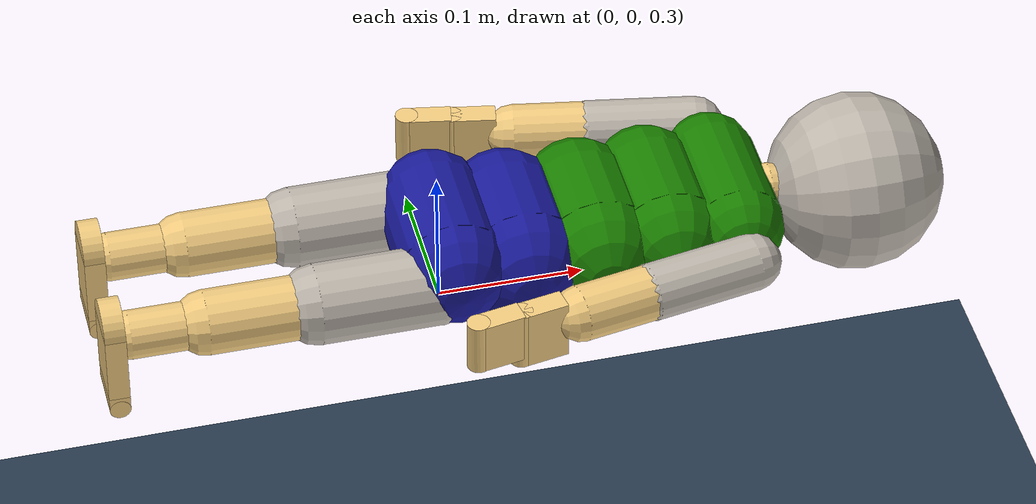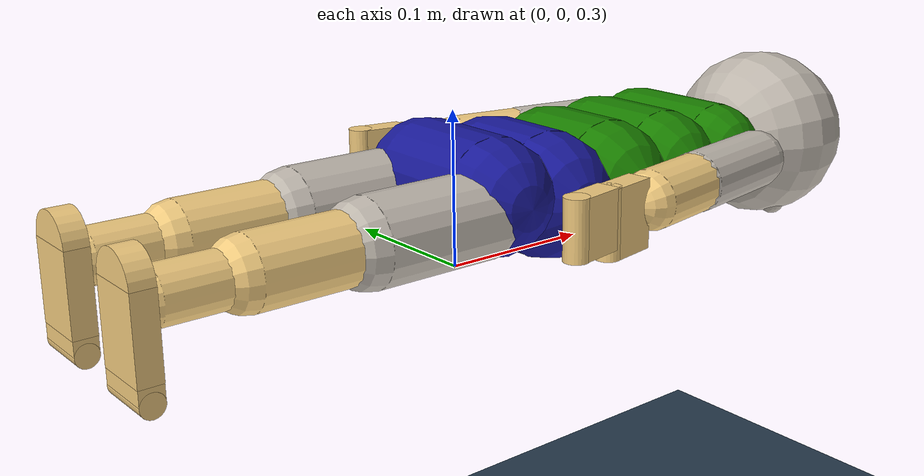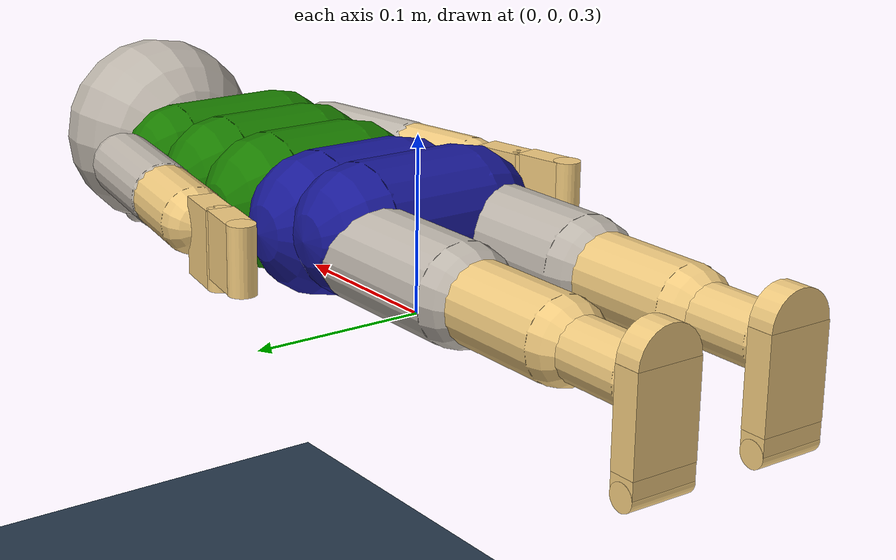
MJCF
<mujoco model="MIMo">

    <compiler inertiafromgeom="true" angle="degree"/>
    <option timestep="0.005" iterations="50" tolerance="1e-10" solver="Newton" jacobian="dense" cone="elliptic" impratio="1.0"/>
    <size nconmax="1000" njmax="5000" nstack="10000000" nuser_cam="3"/>

    <visual>
        <map force="0.1" zfar="30" znear="0.005"/>
        <rgba haze="0.15 0.25 0.35 1"/>
        <quality shadowsize="4096"/>
        <global offwidth="800" offheight="800"/>
    </visual>

    <asset>

        <texture type="skybox" builtin="gradient" rgb1="0.3 0.5 0.7" rgb2="0 0 0" width="512" height="512"/>

        <texture name="texplane" type="2d" builtin="checker" rgb1=".2 .3 .4" rgb2=".1 0.15 0.2" width="512" height="512" mark="cross" markrgb=".8 .8 .8"/>
        <material name="matplane" reflectance="0.3" texture="texplane" texrepeat="1 1" texuniform="true"/>

        <material name="orange" rgba="0.9 0.4 0 1" specular=".2" shininess=".8"/>

    </asset>

	<size nuser_actuator="3" />

	<default>
		<default class="mimo">
        	<joint limited="true" damping=".1" stiffness=".1" armature="0.001" solimplimit="0.98 0.99 0.001 .5 1" solreflimit="0.02 1" />
        	<geom condim="3" material="skin" friction="1 0.005 0.0002" solimp="0.95 0.99 0.001 0.5 1" solref="0.005 1" />
        	<motor ctrlrange="-1 1" ctrllimited="true" forcelimited="true" />
		</default>
    </default>

    <asset>

		<texture name="tex_head_default" type="cube" fileright="tex/head_front.png" fileleft="tex/head_back.png" fileup="tex/head_left.png" filedown="tex/head_right.png" filefront="tex/head_top.png" rgb1="0.95 .8 .5" />
		<texture name="tex_head_happy" type="cube" fileright="tex/head_front_happy.png" fileleft="tex/head_back.png" fileup="tex/head_left.png" filedown="tex/head_right.png" filefront="tex/head_top.png" rgb1="0.95 .8 .5" />
		<texture name="tex_head_sad" type="cube" fileright="tex/head_front_sad.png" fileleft="tex/head_back.png" fileup="tex/head_left.png" filedown="tex/head_right.png" filefront="tex/head_top.png" rgb1="0.95 .8 .5" />
		<texture name="tex_head_surprised" type="cube" fileright="tex/head_front_surprised.png" fileleft="tex/head_back.png" fileup="tex/head_left.png" filedown="tex/head_right.png" filefront="tex/head_top.png" rgb1="0.95 .8 .5" />
		<texture name="tex_head_angry" type="cube" fileright="tex/head_front_angry.png" fileleft="tex/head_back.png" fileup="tex/head_left.png" filedown="tex/head_right.png" filefront="tex/head_top.png" rgb1="0.95 .8 .5" />
		<texture name="tex_head_disgusted" type="cube" fileright="tex/head_front_disgusted.png" fileleft="tex/head_back.png" fileup="tex/head_left.png" filedown="tex/head_right.png" filefront="tex/head_top.png" rgb1="0.95 .8 .5" />
		<texture name="tex_head_scared" type="cube" fileright="tex/head_front_scared.png" fileleft="tex/head_back.png" fileup="tex/head_left.png" filedown="tex/head_right.png" filefront="tex/head_top.png" rgb1="0.95 .8 .5" />
		<texture name="tex_top_sleeve" type="cube" fileright="tex/sleeve_right.png" fileleft="tex/sleeve_left.png" fileup="tex/sleeve_up.png" filedown="tex/sleeve_down.png" filefront="tex/sleeve_front.png" fileback="tex/sleeve_back.png" rgb1="0.95 .8 .5" />
		<texture name="tex_pants_leg" type="cube" fileright="tex/leg_right.png" fileleft="tex/leg_left.png" fileup="tex/leg_up.png" filedown="tex/leg_down.png" filefront="tex/leg_front.png" fileback="tex/leg_back.png" rgb1="0.95 .8 .5" />
		<texture name="tex_eye_left" type="cube" fileright="tex/eye_pupil_left.png" rgb1="1 1 1" />
		<texture name="tex_eye_right" type="cube" fileright="tex/eye_pupil_right.png" rgb1="1 1 1" />

		<material name="skin" rgba="0.95 0.8 0.5 1" specular=".15" shininess=".7" />
		<material name="buttons" rgba=".05 .05 .05 1" specular=".9" shininess=".9" />
		<material name="head" texture="tex_head_default" texuniform="true" specular=".0" shininess=".0" />
		<material name="top_up" rgba=".1 .5 0.0 1" specular=".0" shininess=".0" />
		<material name="top_middle" rgba=".1 .5 0.0 1" specular=".0" shininess=".0" />
		<material name="top_down" rgba=".1 .5 0.0 1" specular=".0" shininess=".0" />
		<material name="top_sleeve" texture="tex_top_sleeve" texuniform="true" specular=".0" shininess=".0" />
		<material name="pants_up" rgba="0.1 0.1 0.6 1" specular=".0" shininess=".0" />
		<material name="pants_down" rgba="0.1 0.1 0.6 1" specular=".0" shininess=".0" />
		<material name="pants_leg" texture="tex_pants_leg" texuniform="true" specular=".0" shininess=".0" />
		<material name="eye_left" texture="tex_eye_left" texuniform="true" specular=".0" shininess=".0" />
		<material name="eye_right" texture="tex_eye_right" texuniform="true" specular=".0" shininess=".0" />

    </asset>

	<contact>
		<pair geom1="lb" geom2="ub1" condim="1" />
		<exclude body1="left_eye" body2="upper_body" />
		<exclude body1="right_eye" body2="upper_body" />
	</contact>

	<tendon>
		<fixed class="mimo" name="hip_bend" limited="true" range="-.01 .01">
			<joint joint="robot:hip_bend1" coef="1" />
			<joint joint="robot:hip_bend2" coef="-1" />
		</fixed>
		<fixed class="mimo" name="hip_rotation" limited="true" range="-.01 .01">
			<joint joint="robot:hip_rot1" coef="1" />
			<joint joint="robot:hip_rot2" coef="-1" />
		</fixed>
		<fixed class="mimo" name="hip_lean" limited="true" range="-.01 .01">
			<joint joint="robot:hip_lean1" coef="1" />
			<joint joint="robot:hip_lean2" coef="-.5" />
		</fixed>
		<fixed class="mimo" name="head_limits1" limited="true" range="-2.1 2.1">
			<joint joint="robot:head_swivel" coef="1" />
			<joint joint="robot:head_tilt_side" coef="1" />
		</fixed>
		<fixed class="mimo" name="head_limits2" limited="true" range="-2.1 2.1">
			<joint joint="robot:head_tilt" coef="1" />
			<joint joint="robot:head_tilt_side" coef="1" />
		</fixed>
		<fixed class="mimo" name="head_limits3" limited="true" range="-2.1 2.1">
			<joint joint="robot:head_swivel" coef="1" />
			<joint joint="robot:head_tilt" coef="1" />
		</fixed>
		<fixed class="mimo" name="head_limits1_sym" limited="true" range="-2.1 2.1">
			<joint joint="robot:head_swivel" coef="1" />
			<joint joint="robot:head_tilt_side" coef="-1" />
		</fixed>
		<fixed class="mimo" name="head_limits2_sym" limited="true" range="-2.1 2.1">
			<joint joint="robot:head_tilt" coef="1" />
			<joint joint="robot:head_tilt_side" coef="-1" />
		</fixed>
		<fixed class="mimo" name="head_limits3_sym" limited="true" range="-2.1 2.1">
			<joint joint="robot:head_swivel" coef="1" />
			<joint joint="robot:head_tilt" coef="-1" />
		</fixed>
	</tendon>

	<sensor>
		<accelerometer name="vestibular_acc" site="vestibular" />
		<gyro name="vestibular_gyro" site="vestibular" />

		<torque name="proprio:neck" site="torque_neck" />
		<torque name="proprio:left_eye" site="torque_left_eye" />
		<torque name="proprio:right_eye" site="torque_right_eye" />

		<torque name="proprio:chest" site="torque_chest" />
		<torque name="proprio:trunk_upper" site="torque_ub" />
		<torque name="proprio:trunk_lower" site="torque_lb" />

		<torque name="proprio:right_shoulder" site="torque_right_shoulder" />
		<torque name="proprio:right_elbow" site="torque_right_elbow" />
		<torque name="proprio:right_wrist" site="torque_right_wrist" />
		<torque name="proprio:right_fingers" site="torque_right_fingers" />

		<torque name="proprio:left_shoulder" site="torque_left_shoulder" />
		<torque name="proprio:left_elbow" site="torque_left_elbow" />
		<torque name="proprio:left_wrist" site="torque_left_wrist" />
		<torque name="proprio:left_fingers" site="torque_left_fingers" />

		<torque name="proprio:right_hip" site="torque_right_hip" />
		<torque name="proprio:right_knee" site="torque_right_knee" />
		<torque name="proprio:right_ankle" site="torque_right_ankle" />
		<torque name="proprio:right_toes" site="torque_right_toes" />

		<torque name="proprio:left_hip" site="torque_left_hip" />
		<torque name="proprio:left_knee" site="torque_left_knee" />
		<torque name="proprio:left_ankle" site="torque_left_ankle" />
		<torque name="proprio:left_toes" site="torque_left_toes" />

		<framelinvel name="kobayashi:left_wrist" objtype="site" objname="KOBAYASHI_LWrist" />
		<framelinvel name="kobayashi:right_wrist" objtype="site" objname="KOBAYASHI_RWrist" />
		<framelinvel name="kobayashi:left_ankle" objtype="site" objname="KOBAYASHI_LAnkle" />
		<framelinvel name="kobayashi:right_ankle" objtype="site" objname="KOBAYASHI_RAnkle" />
		<framelinvel name="kobayashi:torso" objtype="site" objname="KOBAYASHI_Torso" />
	</sensor>

  <actuator>
		<motor class="mimo" name="act:hip_bend" joint="robot:hip_bend1" gear="4.792849908097783" forcerange="-1 .765" user=".8574 32.93 22.97" />
		<motor class="mimo" name="act:hip_twist" joint="robot:hip_rot1" gear="1.6444277094891258" forcerange="-1 1" user="1.699 8.136 8.136" />
		<motor class="mimo" name="act:hip_lean" joint="robot:hip_lean1" gear="3.2843253150953613" forcerange="-1 1" user="1.278 1.264 1.264" />

		<motor class="mimo" name="act:chest_twist" joint="robot:chest_rot" gear="0.1630837397840455" forcerange="-1 1" user="1.699 8.136 8.136" />
		<motor class="mimo" name="act:chest_lean" joint="robot:chest_lean" gear="0.326167479568091" forcerange="-1 1" user="1.278 1.264 1.264" />

		<motor class="mimo" name="act:head_swivel" joint="robot:head_swivel" gear="1.0051784555238277" forcerange="-1 1" user=".6665 24.87 24.87" />
		<motor class="mimo" name="act:head_tilt" joint="robot:head_tilt" gear="1.8428271684603503" forcerange="-1 .55" user=".9338 31.39 16.86" />
		<motor class="mimo" name="act:head_tilt_side" joint="robot:head_tilt_side" gear="1.0051784555238277" forcerange="-1 1" user="1.068 15.69 15.69" />

		<motor class="mimo" name="act:left_eye_horizontal" joint="robot:left_eye_horizontal" gear="0.003015535366571483" forcerange="-1 1" user="5.110 .03025 .03025" />
		<motor class="mimo" name="act:left_eye_vertical" joint="robot:left_eye_vertical" gear="0.003015535366571483" forcerange="-1 1" user="6.179 .02619 .02771" />
		<motor class="mimo" name="act:left_eye_torsional" joint="robot:left_eye_torsional" gear="0.0020662001585767566" forcerange="-1 1" user="25.03 .003686 .003686" />
		<motor class="mimo" name="act:right_eye_horizontal" joint="robot:right_eye_horizontal" gear="0.003015535366571483" forcerange="-1 1" user="5.110 .03025 .03025" />
		<motor class="mimo" name="act:right_eye_vertical" joint="robot:right_eye_vertical" gear="0.003015535366571483" forcerange="-1 1" user="6.179 .02619 .02771" />
		<motor class="mimo" name="act:right_eye_torsional" joint="robot:right_eye_torsional" gear="0.0020662001585767566" forcerange="-1 1" user="25.03 .003686 .003686" />

		<motor class="mimo" name="act:right_shoulder_horizontal" joint="robot:right_shoulder_horizontal" gear="0.8428609627943823" forcerange="-1 1" user="1.811 18.80 15.30" />
		<motor class="mimo" name="act:right_shoulder_abduction" joint="robot:right_shoulder_ad_ab" gear="1.873024361765294" forcerange="-.6875 1" user=".8793 44.17 69.23" />
		<motor class="mimo" name="act:right_shoulder_internal" joint="robot:right_shoulder_rotation" gear="1.1706402261033086" forcerange="-1 .64" user="1.498 25.09 17.10" />
		<motor class="mimo" name="act:right_elbow" joint="robot:right_elbow" gear="1.755558656111056" forcerange="-1 .83" user="1.566 35.43 27.04" />
		<motor class="mimo" name="act:right_wrist_rotation" joint="robot:right_hand1" gear="0.29698396926039833" forcerange="-1 1" user="1.513 7.842 7.842" />
		<motor class="mimo" name="act:right_wrist_flexion" joint="robot:right_hand2" gear="0.5260858884041343" forcerange="-1 .57" user="1.455 13.66 7.874" />
		<motor class="mimo" name="act:right_wrist_ulnar" joint="robot:right_hand3" gear="0.4030496725676834" forcerange="-.87 1" user="2.254 5.155 6.021" />
		<motor class="mimo" name="act:right_fingers" joint="robot:right_fingers" gear="0.29274134112810696" forcerange="-1 .33" user="3.019 6.854 2.551" />

		<motor class="mimo" name="act:left_shoulder_horizontal" joint="robot:left_shoulder_horizontal" gear="0.8428609627943823" forcerange="-1 1" user="1.811 18.80 15.30" />
		<motor class="mimo" name="act:left_shoulder_abduction" joint="robot:left_shoulder_ad_ab" gear="1.873024361765294" forcerange="-.6875 1" user=".8793 44.17 69.23" />
		<motor class="mimo" name="act:left_shoulder_internal" joint="robot:left_shoulder_rotation" gear="1.1706402261033086" forcerange="-1 .64" user="1.498 25.09 17.10" />
		<motor class="mimo" name="act:left_elbow" joint="robot:left_elbow" gear="1.755558656111056" forcerange="-1 .83" user="1.566 35.43 27.04" />
		<motor class="mimo" name="act:left_wrist_rotation" joint="robot:left_hand1" gear="0.29698396926039833" forcerange="-1 1" user="1.513 7.842 7.842" />
		<motor class="mimo" name="act:left_wrist_flexion" joint="robot:left_hand2" gear="0.5260858884041343" forcerange="-1 .57" user="1.455 13.66 7.874" />
		<motor class="mimo" name="act:left_wrist_ulnar" joint="robot:left_hand3" gear="0.4030496725676834" forcerange="-.87 1" user="2.254 5.155 6.021" />
		<motor class="mimo" name="act:left_fingers" joint="robot:left_fingers" gear="0.29274134112810696" forcerange="-1 .33" user="3.019 6.854 2.551" />

		<motor class="mimo" name="act:right_hip_flex" joint="robot:right_hip1" gear="2.938787965593561" forcerange="-1 1" user="1.083 71.25 92.49" />
		<motor class="mimo" name="act:right_hip_abduction" joint="robot:right_hip2" gear="2.292254613162978" forcerange="-1 1" user="1.488 24.81 29.20" />
		<motor class="mimo" name="act:right_hip_rotation" joint="robot:right_hip3" gear="1.3004136747751507" forcerange="-.75 1" user="1.860 12.32 15.78" />
		<motor class="mimo" name="act:right_knee" joint="robot:right_knee" gear="4.119053990913367" forcerange="-.65 1" user="1.450 63.16 89.27" />
		<motor class="mimo" name="act:right_foot_flexion" joint="robot:right_foot1" gear="1.4039955411734266" forcerange="-1 .5" user="1.430 21.34 11.87" />
		<motor class="mimo" name="act:right_foot_inversion" joint="robot:right_foot2" gear="0.43085577453999335" forcerange="-.91 1" user="1.988 4.184 4.645" />
		<motor class="mimo" name="act:right_foot_rotation" joint="robot:right_foot3" gear="0.44571287021378625" forcerange="-1 1" user="2.688 3.868 3.625" />
		<motor class="mimo" name="act:right_toes" joint="robot:right_toes" gear="0.12257103930879122" forcerange="-1 .3" user="1.290 2.947 .8440" />

		<motor class="mimo" name="act:left_hip_flex" joint="robot:left_hip1" gear="2.938787965593561" forcerange="-1 1" user="1.083 71.25 92.49" />
		<motor class="mimo" name="act:left_hip_abduction" joint="robot:left_hip2" gear="2.292254613162978" forcerange="-1 1" user="1.488 24.81 29.20" />
		<motor class="mimo" name="act:left_hip_rotation" joint="robot:left_hip3" gear="1.3004136747751507" forcerange="-.75 1" user="1.860 12.32 15.78" />
		<motor class="mimo" name="act:left_knee" joint="robot:left_knee" gear="4.119053990913367" forcerange="-.65 1" user="1.450 63.16 89.27" />
		<motor class="mimo" name="act:left_foot_flexion" joint="robot:left_foot1" gear="1.4039955411734266" forcerange="-1 .5" user="1.430 21.34 11.87" />
		<motor class="mimo" name="act:left_foot_inversion" joint="robot:left_foot2" gear="0.43085577453999335" forcerange="-.91 1" user="1.988 4.184 4.645" />
		<motor class="mimo" name="act:left_foot_rotation" joint="robot:left_foot3" gear="0.44571287021378625" forcerange="-1 1" user="2.688 3.868 3.625" />
		<motor class="mimo" name="act:left_toes" joint="robot:left_toes" gear="0.12257103930879122" forcerange="-1 .3" user="1.290 2.947 .8440" />
	</actuator>

	<equality>
		<joint name="robot:hip_lean1" joint1="robot:hip_lean1" active="false" polycoef="0 1 0 0 0" />
		<joint name="robot:hip_rot1" joint1="robot:hip_rot1" active="false" polycoef="0 1 0 0 0" />
		<joint name="robot:hip_bend1" joint1="robot:hip_bend1" active="false" polycoef="0 1 0 0 0" />
		<joint name="robot:hip_lean2" joint1="robot:hip_lean2" active="false" polycoef="0 1 0 0 0" />
		<joint name="robot:hip_rot2" joint1="robot:hip_rot2" active="false" polycoef="0 1 0 0 0" />
		<joint name="robot:hip_bend2" joint1="robot:hip_bend2" active="false" polycoef="0 1 0 0 0" />
		<joint name="robot:head_swivel" joint1="robot:head_swivel" active="false" polycoef="0 1 0 0 0" />
		<joint name="robot:head_tilt" joint1="robot:head_tilt" active="false" polycoef="0 1 0 0 0" />
		<joint name="robot:head_tilt_side" joint1="robot:head_tilt_side" active="false" polycoef="0 1 0 0 0" />
		<joint name="robot:left_eye_horizontal" joint1="robot:left_eye_horizontal" active="false" polycoef="0 1 0 0 0" />
		<joint name="robot:left_eye_vertical" joint1="robot:left_eye_vertical" active="false" polycoef="0 1 0 0 0" />
		<joint name="robot:left_eye_torsional" joint1="robot:left_eye_torsional" active="false" polycoef="0 1 0 0 0" />
		<joint name="robot:right_eye_horizontal" joint1="robot:right_eye_horizontal" active="false" polycoef="0 1 0 0 0" />
		<joint name="robot:right_eye_vertical" joint1="robot:right_eye_vertical" active="false" polycoef="0 1 0 0 0" />
		<joint name="robot:right_eye_torsional" joint1="robot:right_eye_torsional" active="false" polycoef="0 1 0 0 0" />
		<joint name="robot:right_shoulder_horizontal" joint1="robot:right_shoulder_horizontal" active="false" polycoef="0 1 0 0 0" />
		<joint name="robot:right_shoulder_ad_ab" joint1="robot:right_shoulder_ad_ab" active="false" polycoef="0 1 0 0 0" />
		<joint name="robot:right_shoulder_rotation" joint1="robot:right_shoulder_rotation" active="false" polycoef="0 1 0 0 0" />
		<joint name="robot:right_elbow" joint1="robot:right_elbow" active="false" polycoef="0 1 0 0 0" />
		<joint name="robot:right_hand1" joint1="robot:right_hand1" active="false" polycoef="0 1 0 0 0" />
		<joint name="robot:right_hand2" joint1="robot:right_hand2" active="false" polycoef="0 1 0 0 0" />
		<joint name="robot:right_hand3" joint1="robot:right_hand3" active="false" polycoef="0 1 0 0 0" />
		<joint name="robot:right_fingers" joint1="robot:right_fingers" active="false" polycoef="0 1 0 0 0" />
		<joint name="robot:left_shoulder_horizontal" joint1="robot:left_shoulder_horizontal" active="false" polycoef="0 1 0 0 0" />
		<joint name="robot:left_shoulder_ad_ab" joint1="robot:left_shoulder_ad_ab" active="false" polycoef="0 1 0 0 0" />
		<joint name="robot:left_shoulder_rotation" joint1="robot:left_shoulder_rotation" active="false" polycoef="0 1 0 0 0" />
		<joint name="robot:left_elbow" joint1="robot:left_elbow" active="false" polycoef="0 1 0 0 0" />
		<joint name="robot:left_hand1" joint1="robot:left_hand1" active="false" polycoef="0 1 0 0 0" />
		<joint name="robot:left_hand2" joint1="robot:left_hand2" active="false" polycoef="0 1 0 0 0" />
		<joint name="robot:left_hand3" joint1="robot:left_hand3" active="false" polycoef="0 1 0 0 0" />
		<joint name="robot:left_fingers" joint1="robot:left_fingers" active="false" polycoef="0 1 0 0 0" />
		<joint name="robot:right_hip1" joint1="robot:right_hip1" active="false" polycoef="0 1 0 0 0" />
		<joint name="robot:right_hip2" joint1="robot:right_hip2" active="false" polycoef="0 1 0 0 0" />
		<joint name="robot:right_hip3" joint1="robot:right_hip3" active="false" polycoef="0 1 0 0 0" />
		<joint name="robot:right_knee" joint1="robot:right_knee" active="false" polycoef="0 1 0 0 0" />
		<joint name="robot:right_foot1" joint1="robot:right_foot1" active="false" polycoef="0 1 0 0 0" />
		<joint name="robot:right_foot2" joint1="robot:right_foot2" active="false" polycoef="0 1 0 0 0" />
		<joint name="robot:right_foot3" joint1="robot:right_foot3" active="false" polycoef="0 1 0 0 0" />
		<joint name="robot:right_toes" joint1="robot:right_toes" active="false" polycoef="0 1 0 0 0" />
		<joint name="robot:left_hip1" joint1="robot:left_hip1" active="false" polycoef="0 1 0 0 0" />
		<joint name="robot:left_hip2" joint1="robot:left_hip2" active="false" polycoef="0 1 0 0 0" />
		<joint name="robot:left_hip3" joint1="robot:left_hip3" active="false" polycoef="0 1 0 0 0" />
		<joint name="robot:left_knee" joint1="robot:left_knee" active="false" polycoef="0 1 0 0 0" />
		<joint name="robot:left_foot1" joint1="robot:left_foot1" active="false" polycoef="0 1 0 0 0" />
		<joint name="robot:left_foot2" joint1="robot:left_foot2" active="false" polycoef="0 1 0 0 0" />
		<joint name="robot:left_foot3" joint1="robot:left_foot3" active="false" polycoef="0 1 0 0 0" />
		<joint name="robot:left_toes" joint1="robot:left_toes" active="false" polycoef="0 1 0 0 0" />
	</equality>

    <equality>
        <weld body1="left_eye" body2="head"/>
        <weld body1="right_eye" body2="head"/>
    </equality>

    <worldbody>

        <geom name="floor" pos="0 0 0" size="0 0 .25" type="plane" material="matplane" condim="3"/>

        <light directional="false" diffuse=".4 .4 .4" specular="0 0 0" pos="0 0 10" dir="0 0 -1" castshadow="false"/>
        <light mode="targetbodycom" target="upper_body" directional="false" diffuse=".75 .75 .75" specular="0.3 0.3 0.3" pos="3 0 5" dir="0 0 -1"/>

        <body name="mimo_location" pos="0 0 0.35" euler="0 90 0">
            <freejoint name="mimo_location"/>

	<body childclass="mimo" name="hip" pos="0 0 0">

		<geom name="lb" type="capsule" size="0.03686469324567119 0.033024621032580435 0.0" mass="0.5247672337939953" material="pants_down" pos="-0.002 0.0 0.003840072213090749" euler="90 0 0" />
		<site name="lowerBody_center" type="sphere" size=".01 .01 .01" pos="0 0 0" />
		<site name="BODY_25:MidHip" type="sphere" size=".005" pos="0.005 0.0 -0.007" rgba="0 0 0 1" />
		<body name="lower_body" pos="0.002 0.0 0.05836909763897938">
			<joint name="robot:hip_lean1" type="hinge" pos="0.0 0.0 -0.04070476545876194" axis="1 0 0" range="-14 14" stiffness="3.38" damping="0.77" frictionloss=".049" armature="0.01" />
			<joint name="robot:hip_rot1" type="hinge" pos="0.0 0.0 -0.04070476545876194" axis="0 0 1" range="-18 18" stiffness="1.45" damping="0.29" frictionloss=".018" armature="0.01" />
			<joint name="robot:hip_bend1" type="hinge" pos="0.0 0.0 -0.04070476545876194" axis="0 1 0" range="-17 30.5" stiffness="2.20" damping="0.84" frictionloss="0.040" armature="0.01" />
			<site name="torque_lb" type="sphere" size="0.01" pos="0 0 0" group="4" />
			<geom name="cb" type="capsule" size="0.04070476545876194 0.026880505491635242 0.0" mass="0.6000122592888009" material="pants_up" contype="0" pos="0.005 0.0 -0.006144115540945199" euler="90 0 0" />

			<body name="upper_body" pos="-0.002 0.0 0.06988931427825162">

				<site name="KOBAYASHI_Torso" type="sphere" size="0.01" pos=".03993675101614379 0 0.03993675101614379" rgba="1 0 0 0" />
				<joint name="robot:hip_lean2" type="hinge" pos="0.0 0.0 -0.03993675101614379" axis="1 0 0" range="-27 27" stiffness="1.69" damping="0.38" frictionloss=".024" armature="0.01" />
				<joint name="robot:hip_rot2" type="hinge" pos="0.0 0.0 -0.03993675101614379" axis="0 0 1" range="-18 18" stiffness="1.45" damping="0.29" frictionloss=".018" armature="0.01" />
				<joint name="robot:hip_bend2" type="hinge" pos="0.0 0.0 -0.03993675101614379" axis="0 1 0" range="-17 30.5" stiffness="2.20" damping="0.84" frictionloss="0.040" armature="0.01" />
				<site name="torque_ub" type="sphere" size="0.01" pos="0 0 0" group="4" />
				<geom name="ub1" type="capsule" size="0.03993675101614379 0.026880505491635235 0.0" mass="0.4929659045361064" material="top_down" pos="0.007 0.0 -0.024576462163780795" euler="90 0 0" />
				<geom name="ub2" type="capsule" size="0.03686469324567119 0.02995256326210783 0.0" mass="0.4303145678357355" material="top_middle" pos="0.004 0.0 0.023040433278544492" euler="90 0 0" />
				<geom name="neck" type="capsule" size="0.015131578546960883 1e-06 0.0" mass="0.0" material="skin" pos="0.0 0.0 0.1006108919829776" euler="0 0 0" />

				<body name="chest" pos="0.0 0.0 0.06912129983563346">
					<site name="BODY_25:Neck" type="sphere" size=".005 .005 .005" pos="0.0 0.0 0.0" rgba="0 0 0 1" />
					<joint name="robot:chest_lean" type="hinge" pos="0 0 0" axis="1 0 0" range="-9 9" stiffness="1.69" damping="0.38" frictionloss=".024" armature="0.01" />
					<joint name="robot:chest_rot" type="hinge" pos="0 0 0" axis="0 0 1" range="-18 18" stiffness="1.45" damping="0.29" frictionloss=".018" armature="0.01" />
					<site name="torque_chest" type="sphere" size="0.01" pos="0 0 0" group="4" />
					<geom name="ub3" type="capsule" size="0.03148859214734414 0.03609667880305304 0.0" mass="0.32693759722818233" material="top_up" pos="0 0 0" euler="90 0 0" />

					<body name="right_upper_arm" pos="0.0 -0.07242856267571665 0.0" euler="170 0 0">

						<site name="BODY_25:RShoulder" type="sphere" size=".005 .005 .005" pos="0.0 0.0 0.0" rgba="0 0 0 1" />
						<joint name="robot:right_shoulder_horizontal" type="hinge" pos="0 0 0" axis="0 1 -4" range="-28 118" stiffness=".09" damping=".05" frictionloss=".0009" armature="0.004" />
						<joint name="robot:right_shoulder_ad_ab" type="hinge" pos="0 0 0" axis="-1 0 0" range="-84 183" stiffness=".11" damping=".10" frictionloss=".0014" armature="0.004" />
						<joint name="robot:right_shoulder_rotation" type="hinge" pos="0 0 0" axis="0 0 -1" range="-99 67" stiffness=".12" damping=".07" frictionloss=".0008" armature="0.004" />
						<site name="torque_right_shoulder" type="sphere" size="0.01" pos="0 0 0" group="4" />
						<geom name="right_uarm1" type="capsule" material="top_sleeve" size="0.019373166901277886 0.03710112680705719 0.0" mass="0.12567993467445124" pos="0.0 0.0 0.03710112680705719" euler="0 0 0" />
						<body name="right_lower_arm" pos="0.0 -0.0 0.07420225361411438" euler="0 0 0">

							<site name="KOBAYASHI_RWrist" type="sphere" size=".01" pos="0 0.021 .04984" rgba="1 0 0 0" />
							<site name="BODY_25:RElbow" type="sphere" size=".005 .005 .005" pos="0.0 0.0 0.0" rgba="0 0 0 1" />
							<joint name="robot:right_elbow" type="hinge" pos="0 0 0" axis="0 -1 0" springref="-20" range="-146 5" stiffness=".13" damping=".11" frictionloss=".030" armature="0.002" />
							<site name="torque_right_elbow" type="sphere" size="0.01" pos="0 0 0" group="4" />
							<geom name="right_larm" type="capsule" size="0.018875601715153244 0.02530807139340809 0.0" mass="0.09036250527149409" pos="0.0 0.0 0.02530807139340809" />
							<body name="right_hand" pos="0.0 -0.0 0.06232764713063236" euler="0 0 0">
								<site name="BODY_25:RWrist" type="sphere" size=".005 .005 .005" pos="0.0 0.0 0.0" />
								<joint name="robot:right_hand1" type="hinge" pos="0 0 0" axis="0 0 -1" springref="-20" range="-90 90" stiffness=".22" damping=".03" frictionloss=".007" armature="0.001" />
								<joint name="robot:right_hand2" type="hinge" pos="0 0 0" axis="-1 0 0" range="-92 86" stiffness=".33" damping=".11" frictionloss=".007" armature="0.001" />
								<joint name="robot:right_hand3" type="hinge" pos="0 0 0" axis="0 1 0" range="-53 48" stiffness=".38" damping=".11" frictionloss=".007" armature="0.001" />
								<site name="torque_right_wrist" type="sphere" size="0.01" pos="0 0 0" group="4" />
								<geom name="geom:right_hand1" type="box" size="0.021517074714776034 0.007584957320736997 0.015193864637198231" mass="0.018306940390837415" pos="0.0037924786603684983 0.0 0.015193864637198231" />
								<geom name="geom:right_hand2" type="cylinder" size="0.007784957320736996 0.021517074714776034 0.0" mass="0.007222924448360968" pos="0.0037924786603684983 0.0 0.030387729274396463" euler="0 90 0" />
								<body name="right_fingers" pos="0.0 -0.0 0.030387729274396463">
									<joint name="robot:right_fingers" type="hinge" pos="0 0 0" axis="-1 0 0" springref="-40" range="-160 8" stiffness=".017" damping=".018" frictionloss=".0023" armature="0.0001" />
									<site name="torque_right_fingers" type="sphere" size="0.01" pos="0 0 0" group="4" />
									<geom name="geom:right_fingers1" type="box" size="0.01854840022384723 0.007584957320736997 0.015120817211057857" mass="0.0157489850691357" pos="0.0 0.0 0.015120817211057857" friction="5 0.02 0.01" />
									<geom name="geom:right_fingers2" type="cylinder" size="0.007784957320736996 0.018748400223847227 0.0" mass="0.006282150731726107" pos="0.0 0.0 0.030241634422115714" euler="0 90 0" friction="5 0.02 0.01" />
								</body>
							</body>
						</body>
					</body>

					<body name="left_upper_arm" pos="0.0 0.07242856267571665 0.0" euler="-170 0 0">

						<site name="BODY_25:LShoulder" type="sphere" size=".005 .005 .005" pos="0.0 0.0 0.0" rgba="0 0 0 1" />
						<joint name="robot:left_shoulder_horizontal" type="hinge" pos="0 0 0" axis="0 1 4" range="-28 118" stiffness=".09" damping=".05" frictionloss=".0009" armature="0.004" />
						<joint name="robot:left_shoulder_ad_ab" type="hinge" pos="0 0 0" axis="1 0 0" range="-84 183" stiffness=".11" damping=".10" frictionloss=".0014" armature="0.004" />
						<joint name="robot:left_shoulder_rotation" type="hinge" pos="0 0 0" axis="0 0 1" range="-99 67" stiffness=".12" damping=".07" frictionloss=".0008" armature="0.004" />
						<site name="torque_left_shoulder" type="sphere" size="0.01" pos="0 0 0" group="4" />
						<geom name="left_uarm1" type="capsule" material="top_sleeve" size="0.019373166901277886 0.03710112680705719 0.0" mass="0.12567993467445124" pos="0.0 0.0 0.03710112680705719" euler="0 0 0" />
						<body name="left_lower_arm" pos="0.0 0.0 0.07420225361411438" euler="0 0 0">

							<site name="KOBAYASHI_LWrist" type="sphere" size=".01" pos="0 -0.021 .04984" rgba="1 0 0 0" />
							<site name="BODY_25:LElbow" type="sphere" size=".005 .005 .005" pos="0.0 0.0 0.0" rgba="0 0 0 1" />
							<joint name="robot:left_elbow" type="hinge" pos="0 0 0" axis="0 -1 0" springref="-20" range="-146 5" stiffness=".13" damping=".11" frictionloss=".030" armature="0.002" />
							<site name="torque_left_elbow" type="sphere" size="0.01" pos="0 0 0" group="4" />
							<geom name="left_larm" type="capsule" size="0.018875601715153244 0.02530807139340809 0.0" mass="0.09036250527149409" pos="0.0 0.0 0.02530807139340809" />
							<body name="left_hand" pos="0.0 0.0 0.06232764713063236" euler="0 0 0">
								<site name="BODY_25:LWrist" type="sphere" size=".005 .005 .005" pos="0.0 0.0 0.0" rgba="0 0 0 1" />
								<joint name="robot:left_hand1" type="hinge" pos="0 0 0" axis="0 0 1" springref="-20" range="-90 90" stiffness=".22" damping=".03" frictionloss=".007" armature="0.001" />
								<joint name="robot:left_hand2" type="hinge" pos="0 0 0" axis="1 0 0" range="-92 86" stiffness=".33" damping=".11" frictionloss=".007" armature="0.001" />
								<joint name="robot:left_hand3" type="hinge" pos="0 0 0" axis="0 1 0" range="-53 48" stiffness=".38" damping=".11" frictionloss=".007" armature="0.001" />
								<site name="torque_left_wrist" type="sphere" size="0.01" pos="0 0 0" group="4" />
								<geom name="geom:left_hand1" type="box" size="0.021517074714776034 0.007584957320736997 0.015193864637198231" mass="0.018306940390837415" pos="0.0037924786603684983 0.0 0.015193864637198231" />
								<geom name="geom:left_hand2" type="cylinder" size="0.007784957320736996 0.021517074714776034 0.0" mass="0.007222924448360968" pos="0.0037924786603684983 0.0 0.030387729274396463" euler="0 90 0" />
								<body name="left_fingers" pos="0.0 0.0 0.030387729274396463">
									<joint name="robot:left_fingers" type="hinge" pos="0 0 0" axis="1 0 0" springref="-40" range="-160 8" stiffness=".017" damping=".018" frictionloss=".0023" armature="0.0001" />
									<site name="torque_left_fingers" type="sphere" size="0.01" pos="0 0 0" group="4" />
									<geom name="geom:left_fingers1" type="box" size="0.01854840022384723 0.007584957320736997 0.015120817211057857" mass="0.0157489850691357" pos="0.0 0.0 0.015120817211057857" friction="5 0.02 0.01" />
									<geom name="geom:left_fingers2" type="cylinder" size="0.007784957320736996 0.018748400223847227 0.0" mass="0.006282150731726107" pos="0.0 0.0 0.030241634422115714" euler="0 90 0" friction="5 0.02 0.01" />
								</body>
							</body>
						</body>
					</body>
				</body>
				<body name="head" pos="0.0 0.0 0.1006118919829776">
					<geom name="head" type="sphere" size="0.06052631418784353 0.0 0.0" mass="0.9911059571464939" material="head" pos="0.008234872678618168 0.0 0.06052631418784353" />
					<site name="vestibular" type="sphere" size="0.01" pos="0.01 0.0 0.06052631418784353" group="4" />
					<site name="torque_neck" type="sphere" size="0.01" pos="0 0 0" group="4" />
					<joint name="robot:head_swivel" type="hinge" pos="0 0 0" axis="0 0 1" range="-111 111" stiffness=".23" damping=".29" frictionloss=".018" armature="0.005" />
					<joint name="robot:head_tilt" type="hinge" pos="0.0 0.0 0.010087719031307256" axis="0 1 0" range="-70 81" stiffness=".45" damping=".53" frictionloss=".018" armature="0.005" />
					<joint name="robot:head_tilt_side" type="hinge" pos="0.0 0.0 0.02017543806261451" axis="1 0 0" range="-70 70" stiffness=".37" damping=".29" frictionloss=".018" armature="0.005" />
					<body name="left_eye" pos="0.05764410875032718 0.02017543806261451 0.05548245467218991">
						<site name="BODY_25:LEye" type="sphere" size=".005 .005 .005" pos="0.0 0.0 0.0" rgba="0 0 0 1" />
						<site name="torque_left_eye" type="sphere" size="0.01" pos="0 0 0" group="4" />
						<joint name="robot:left_eye_horizontal" type="hinge" pos="0 0 0" axis="0 0 1" range="-45 45" stiffness=".00065" damping=".00042" frictionloss=".000054" armature=".0002" />
						<joint name="robot:left_eye_vertical" type="hinge" pos="0 0 0" axis="0 -1 0" range="-47 33" stiffness=".00065" damping=".00042" frictionloss=".000054" armature=".0002" />
						<joint name="robot:left_eye_torsional" type="hinge" pos="0 0 0" axis="-1 0 0" range="-8 8" stiffness=".00267" damping=".00042" frictionloss=".000037" armature=".0002" />
						<geom name="geom:left_eye1" type="sphere" material="eye_left" size="0.009264231763445438 0.0 0.0" mass="0.003504163782451121" pos="0 0 0" />
						<camera name="eye_left" mode="fixed" fovy="60" pos="0.01125 0 0" euler="90 -90 0" />
					</body>
					<body name="right_eye" pos="0.05764410875032718 -0.02017543806261451 0.05548245467218991">
						<site name="BODY_25:REye" type="sphere" size=".005 .005 .005" pos="0.0 0.0 0.0" rgba="0 0 0 1" />
						<site name="torque_right_eye" type="sphere" size="0.01" pos="0 0 0" group="4" />
						<joint name="robot:right_eye_horizontal" type="hinge" pos="0 0 0" axis="0 0 -1" range="-45 45" stiffness=".00065" damping=".00042" frictionloss=".000054" armature=".0002" />
						<joint name="robot:right_eye_vertical" type="hinge" pos="0 0 0" axis="0 -1 0" range="-47 33" stiffness=".00065" damping=".00042" frictionloss=".000054" armature=".0002" />
						<joint name="robot:right_eye_torsional" type="hinge" pos="0 0 0" axis="1 0 0" range="-8 8" stiffness=".00267" damping=".00042" frictionloss=".000037" armature=".0002" />
						<geom name="geom:right_eye1" type="sphere" material="eye_right" size="0.009264231763445438 0.0 0.0" mass="0.003504163782451121" pos="0 0 0" />
						<camera name="eye_right" mode="fixed" fovy="60" pos="0.01125 0 0" euler="90 -90 0" />
					</body>
					<site name="BODY_25:Nose" type="sphere" size=".005" pos="0.056408877848534454 0.0 0.035821696151989026" rgba="0 0 0 1" />
					<site name="BODY_25:LEar" type="sphere" size=".005" pos="0.01 0.05146795424136355 0.04735051790205447" rgba="0 0 0 1" />
					<site name="BODY_25:REar" type="sphere" size=".005" pos="0.01 -0.05146795424136355 0.04735051790205447" rgba="0 0 0 1" />
				</body>
			</body>
		</body>

		<body name="right_upper_leg" pos="0.005 -0.03916873657352564 -0.007">

			<joint name="robot:right_hip1" type="hinge" pos="0 0 0" axis="0 1 0" springref="-10" range="-133 20" stiffness="1.72" damping="1.27" frictionloss=".08" armature=".005" />
			<joint name="robot:right_hip2" type="hinge" pos="0 0 0" axis="1 0 0" range="-51 17" stiffness="3.51" damping="1.99" frictionloss=".062" armature=".005" />
			<joint name="robot:right_hip3" type="hinge" pos="0 0 0" axis="0 0 -1" range="-32 41" stiffness="2.16" damping="0.75" frictionloss=".027" armature=".005" />
			<site name="torque_right_hip" type="sphere" size="0.01" pos="0 0 0" group="4" />
			<site name="BODY_25:RHip" type="sphere" size=".005 .005 .005" pos="0.0 0.0 0.0" rgba="0 0 0 1" />
			<geom name="geom:right_upper_leg1" type="capsule" material="pants_leg" contype="2" conaffinity="3" size="0.02722044556656837 0.041014879033176105 0.0" mass="0.29380532686021626" pos="0.0 0.0 -0.04232735516223774" euler="0 0 0" />
			<body name="right_lower_leg" pos="0.0 -0.0 -0.09545577016631285">

				<site name="KOBAYASHI_RAnkle" type="sphere" size=".01" pos=".016372124707133263 0 -.09796" rgba="1 0 0 0" />
				<joint name="robot:right_knee" type="hinge" pos="0 0 0" axis="0 -1 0" springref="-30" range="-145 4" stiffness="1.63" damping="0.53" frictionloss=".065" armature=".003" />
				<site name="torque_right_knee" type="sphere" size="0.01" pos="0 0 0" group="4" />
				<site name="BODY_25:RKnee" type="sphere" size=".005 .005 .005" pos="0.0 0.0 0.0" rgba="0 0 0 1" />
				<geom name="geom:right_lower_leg1" type="capsule" size="0.02191761190312916 0.031059136799112194 0.0" mass="0.1376175938364156" pos="0.0 0.0 -0.031059136799112194" euler="0 0 0" />
				<geom name="geom:right_lower_leg2" type="capsule" size="0.016372124707133263 0.01976490523579867 0.0" mass="0.051502779723254025" pos="0.0 0.0 -0.09317741039733658" euler="0 0 0" />
				<body name="right_foot" pos="0.0 -0.0 -0.12423654719644878">
					<joint name="robot:right_foot1" type="hinge" pos="0.0 -0.0 0.010713024925182023" axis="0 -1 0" springref="-10" range="-63 32" stiffness="1.29" damping="0.6" frictionloss=".019" armature=".003" />
					<joint name="robot:right_foot2" type="hinge" pos="0.0 -0.0 0.010713024925182023" axis="1 0 0" range="-33 31" stiffness="0.96" damping="0.37" frictionloss=".011" armature=".0025" />
					<joint name="robot:right_foot3" type="hinge" pos="0.0 -0.0 0.010713024925182023" axis="0 0 1" range="-20 30" stiffness="1.15" damping="0.38" frictionloss=".012" armature=".002" />
					<site name="torque_right_ankle" type="sphere" size="0.01" pos="0 0 0" group="4" />
					<site name="BODY_25:RAnkle" type="sphere" size=".005" pos="0.0 0.0 0.010713024925182023" rgba="0 0 0 1" />
					<site name="BODY_25:RHeel" type="sphere" size=".005" pos="-0.024633703809900216 0.0 0.0" rgba="0 0 0 1" />
					<geom name="geom:right_foot1" type="cylinder" size="0.018372743935028368 0.0070420166167880155 0.0" mass="0.01246614510846078" pos="-0.01126112174166867 0.0 0.0" euler="0 0 0" />
					<geom name="geom:right_foot2" type="box" size="0.024633703809900216 0.018472743935028367 0.007142016616788016" mass="0.021728502422922083" pos="0.013372582068231548 0.0 0.0" euler="0 0 0" friction="2 0.02 0.01" />
					<geom name="geom:right_foot3" type="cylinder" size="0.0070420166167880155 0.018272743935028368 0.0" mass="0.004727102755089131" pos="0.03800628587813176 0.0 0.0" euler="90 0 0" friction="2 0.02 0.01" />
					<body name="right_toes" pos="0.03800628587813176 -0.0 0.0">
						<joint name="robot:right_toes" type="hinge" pos="0 0 0" axis="0 -1 0" range="-60 80" frictionloss=".005" armature=".0005" stiffness=".106" damping=".04" />
						<site name="torque_right_toes" type="sphere" size="0.01" pos="0 0 0" group="4" />
						<geom name="geom:right_toes1" type="box" size="0.004926740761980043 0.018372743935028368 0.0070420166167880155" mass="0.004004308040324463" pos="0.004926740761980043 0.0 0.0" euler="0 0 0" friction="2 0.02 0.01" />
						<geom name="geom:right_toes2" type="cylinder" size="0.007142016616788016 0.018472743935028367 0.0" mass="0.004620868230653345" pos="0.009853481523960086 0.0 0.0" euler="90 0 0" friction="2 0.02 0.01" />
						<site name="BODY_25:RBigToe" type="sphere" size=".005" pos="0.00774202119739721 0.008866917088813616 0.0" rgba="0 0 0 1" />
						<site name="BODY_25:RSmallToe" type="sphere" size=".005" pos="0.007038201088542919 -0.008866917088813616 0.0" rgba="0 0 0 1" />
					</body>
				</body>
			</body>
		</body>

		<body name="left_upper_leg" pos="0.005 0.03916873657352564 -0.007">

			<site name="BODY_25:LHip" type="sphere" size=".005 .005 .005" pos="0.0 0.0 0.0" rgba="0 0 0 1" />
			<joint name="robot:left_hip1" type="hinge" pos="0 0 0" axis="0 1 0" springref="-10" range="-133 20" stiffness="1.72" damping="1.27" frictionloss=".08" armature=".005" />
			<joint name="robot:left_hip2" type="hinge" pos="0 0 0" axis="-1 0 0" range="-51 17" stiffness="3.51" damping="1.99" frictionloss=".062" armature=".005" />
			<joint name="robot:left_hip3" type="hinge" pos="0 0 0" axis="0 0 1" range="-32 41" stiffness="2.16" damping="0.75" frictionloss=".027" armature=".005" />
			<site name="torque_left_hip" type="sphere" size="0.01" pos="0 0 0" group="4" />
			<geom name="geom:left_upper_leg1" type="capsule" material="pants_leg" contype="2" conaffinity="3" size="0.02722044556656837 0.041014879033176105 0.0" mass="0.29380532686021626" pos="0.0 0.0 -0.04232735516223774" euler="0 0 0" />
			<body name="left_lower_leg" pos="0.0 0.0 -0.09545577016631285">

				<site name="KOBAYASHI_LAnkle" type="sphere" size=".01" pos=".016372124707133263 0 -.09796" rgba="1 0 0 0" />
				<joint name="robot:left_knee" type="hinge" pos="0 0 0" axis="0 -1 0" springref="-30" range="-145 4" stiffness="1.63" damping="0.53" frictionloss=".065" armature=".003" />
				<site name="torque_left_knee" type="sphere" size="0.01" pos="0 0 0" group="4" />
				<site name="BODY_25:LKnee" type="sphere" size=".005" pos="0.0 0.0 0.0" rgba="0 0 0 1" />
				<geom name="geom:left_lower_leg1" type="capsule" size="0.02191761190312916 0.031059136799112194 0.0" mass="0.1376175938364156" pos="0.0 0.0 -0.031059136799112194" euler="0 0 0" />
				<geom name="geom:left_lower_leg2" type="capsule" size="0.016372124707133263 0.01976490523579867 0.0" mass="0.051502779723254025" pos="0.0 0.0 -0.09317741039733658" euler="0 0 0" />
				<body name="left_foot" pos="0.0 0.0 -0.12423654719644878">
					<joint name="robot:left_foot1" type="hinge" pos="0.0 0.0 0.010713024925182023" axis="0 -1 0" springref="-10" range="-63 32" stiffness="1.29" damping="0.6" frictionloss=".019" armature=".003" />
					<joint name="robot:left_foot2" type="hinge" pos="0.0 0.0 0.010713024925182023" axis="-1 0 0" range="-33 31" stiffness="0.96" damping="0.37" frictionloss=".011" armature=".0025" />
					<joint name="robot:left_foot3" type="hinge" pos="0.0 0.0 0.010713024925182023" axis="0 0 -1" range="-20 30" stiffness="1.15" damping="0.38" frictionloss=".012" armature=".002" />
					<site name="torque_left_ankle" type="sphere" size="0.01" pos="0 0 0" group="4" />
					<site name="BODY_25:LAnkle" type="sphere" size=".005" pos="0.0 0.0 0.010713024925182023" rgba="0 0 0 1" />
					<site name="BODY_25:LHeel" type="sphere" size=".005" pos="-0.024633703809900216 0.0 0.0" rgba="0 0 0 1" />
					<geom name="geom:left_foot1" type="cylinder" size="0.018372743935028368 0.0070420166167880155 0.0" mass="0.01246614510846078" pos="-0.01126112174166867 0.0 0.0" euler="0 0 0" />
					<geom name="geom:left_foot2" type="box" size="0.024633703809900216 0.018472743935028367 0.007142016616788016" mass="0.021728502422922083" pos="0.013372582068231548 0.0 0.0" euler="0 0 0" friction="2 0.02 0.01" />
					<geom name="geom:left_foot3" type="cylinder" size="0.0070420166167880155 0.018272743935028368 0.0" mass="0.004727102755089131" pos="0.03800628587813176 0.0 0.0" euler="90 0 0" friction="2 0.02 0.01" />
					<body name="left_toes" pos="0.03800628587813176 0.0 0.0">
						<joint name="robot:left_toes" type="hinge" pos="0 0 0" axis="0 -1 0" range="-60 80" frictionloss=".005" armature=".0005" stiffness=".106" damping=".04" />
						<site name="torque_left_toes" type="sphere" size="0.01" pos="0 0 0" group="4" />
						<geom name="geom:left_toes1" type="box" size="0.004926740761980043 0.018372743935028368 0.0070420166167880155" mass="0.004004308040324463" pos="0.004926740761980043 0.0 0.0" euler="0 0 0" friction="2 0.02 0.01" />
						<geom name="geom:left_toes2" type="cylinder" size="0.007142016616788016 0.018472743935028367 0.0" mass="0.004620868230653345" pos="0.009853481523960086 0.0 0.0" euler="90 0 0" friction="2 0.02 0.01" />
						<site name="BODY_25:LBigToe" type="sphere" size=".005" pos="0.00774202119739721 -0.008866917088813616 0.0" rgba="0 0 0 1" />
						<site name="BODY_25:LSmallToe" type="sphere" size=".005" pos="0.007038201088542919 0.008866917088813616 0.0" rgba="0 0 0 1" />
					</body>
				</body>
			</body>
		</body>

	</body>

        </body>

        <camera name="corner" pos="3 -3 3" fovy="20" mode="targetbody" target="mimo_location"/>
        <camera name="top" pos="0 0 1.4" euler="0 0 -90" mode="fixed"/>
        <camera name="side1" pos="2 0 .5" euler="90 90 0" mode="fixed"/>
        <camera name="side2" pos="0 2 .5" euler="90 180 0" mode="fixed"/>
        <camera name="closeup" pos="0.25 -0.25 1" mode="targetbody" target="mimo_location"/>

    </worldbody>

</mujoco>
